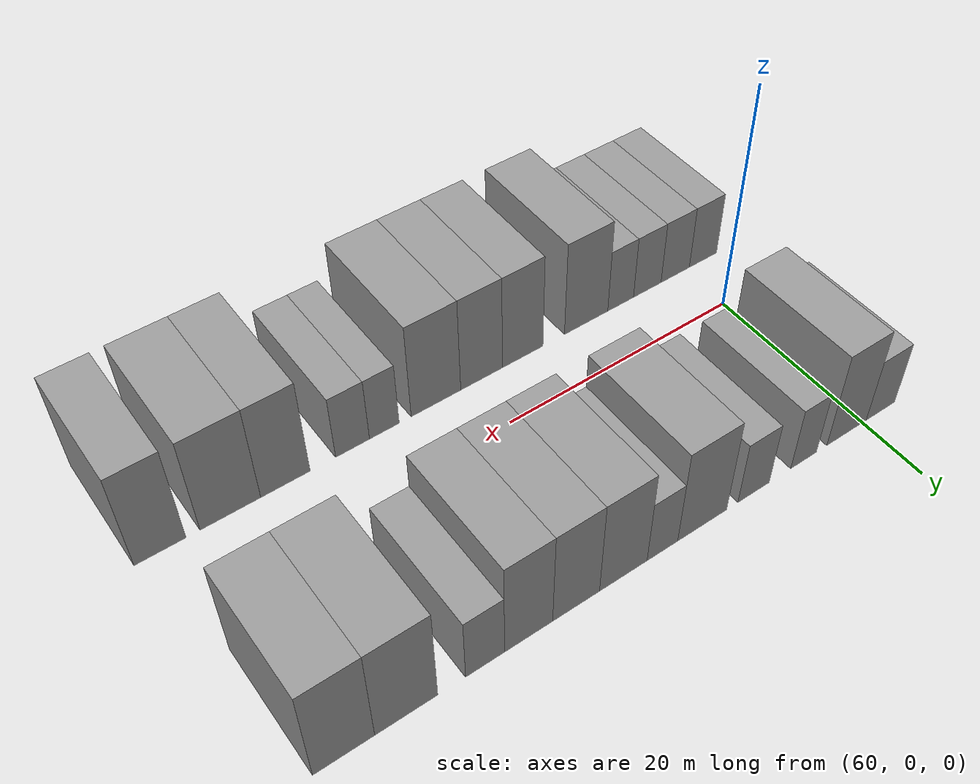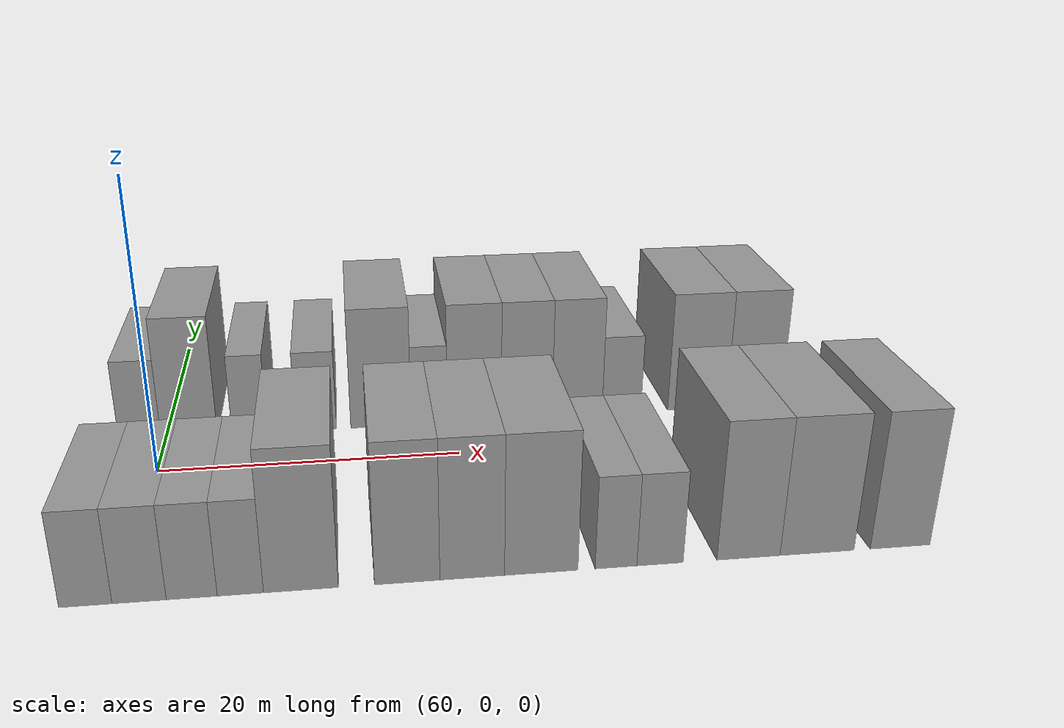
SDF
<sdf version="1.6">
 <world name="default">
  <model name="building_13">
   <static>1</static>
   <pose>58.2277 9.5000 0 0.000000 0.000000 1.570796</pose>
   <link name="link">
    <pose>0 0 3.00 0 0 0</pose>
    <collision name="collision"><geometry><box><size>10.0000 2.8518 6.0000</size></box></geometry></collision>
    <visual name="visual">
     <cast_shadows>0</cast_shadows>
     <geometry><box><size>10.0000 2.8518 6.0000</size></box></geometry>
     <material>
      <script>
       <uri>model://grey_wall/materials/scripts</uri>
       <uri>model://grey_wall/materials/textures</uri>
       <name>vrc/grey_wall</name>
      </script>
     </material>
    </visual>
   </link>
  </model>
  <model name="building_14">
   <static>1</static>
   <pose>61.5808 9.5000 0 0.000000 0.000000 1.570796</pose>
   <link name="link">
    <pose>0 0 4.50 0 0 0</pose>
    <collision name="collision"><geometry><box><size>10.0000 3.8543 9.0000</size></box></geometry></collision>
    <visual name="visual">
     <cast_shadows>0</cast_shadows>
     <geometry><box><size>10.0000 3.8543 9.0000</size></box></geometry>
     <material>
      <script>
       <uri>model://grey_wall/materials/scripts</uri>
       <uri>model://grey_wall/materials/textures</uri>
       <name>vrc/grey_wall</name>
      </script>
     </material>
    </visual>
   </link>
  </model>
  <model name="building_15">
   <static>1</static>
   <pose>65.7186 9.5000 0 0.000000 0.000000 1.570796</pose>
   <link name="link">
    <pose>0 0 3.00 0 0 0</pose>
    <collision name="collision"><geometry><box><size>10.0000 2.4212 6.0000</size></box></geometry></collision>
    <visual name="visual">
     <cast_shadows>0</cast_shadows>
     <geometry><box><size>10.0000 2.4212 6.0000</size></box></geometry>
     <material>
      <script>
       <uri>model://grey_wall/materials/scripts</uri>
       <uri>model://grey_wall/materials/textures</uri>
       <name>vrc/grey_wall</name>
      </script>
     </material>
    </visual>
   </link>
  </model>
  <model name="building_16">
   <static>1</static>
   <pose>70.3492 9.5000 0 0.000000 0.000000 1.570796</pose>
   <link name="link">
    <pose>0 0 3.00 0 0 0</pose>
    <collision name="collision"><geometry><box><size>10.0000 2.8400 6.0000</size></box></geometry></collision>
    <visual name="visual">
     <cast_shadows>0</cast_shadows>
     <geometry><box><size>10.0000 2.8400 6.0000</size></box></geometry>
     <material>
      <script>
       <uri>model://grey_wall/materials/scripts</uri>
       <uri>model://grey_wall/materials/textures</uri>
       <name>vrc/grey_wall</name>
      </script>
     </material>
    </visual>
   </link>
  </model>
  <model name="building_17">
   <static>1</static>
   <pose>74.9035 9.5000 0 0.000000 0.000000 1.570796</pose>
   <link name="link">
    <pose>0 0 4.50 0 0 0</pose>
    <collision name="collision"><geometry><box><size>10.0000 4.2686 9.0000</size></box></geometry></collision>
    <visual name="visual">
     <cast_shadows>0</cast_shadows>
     <geometry><box><size>10.0000 4.2686 9.0000</size></box></geometry>
     <material>
      <script>
       <uri>model://grey_wall/materials/scripts</uri>
       <uri>model://grey_wall/materials/textures</uri>
       <name>vrc/grey_wall</name>
      </script>
     </material>
    </visual>
   </link>
  </model>
  <model name="building_18">
   <static>1</static>
   <pose>78.3266 9.5000 0 0.000000 0.000000 1.570796</pose>
   <link name="link">
    <pose>0 0 3.00 0 0 0</pose>
    <collision name="collision"><geometry><box><size>10.0000 2.5777 6.0000</size></box></geometry></collision>
    <visual name="visual">
     <cast_shadows>0</cast_shadows>
     <geometry><box><size>10.0000 2.5777 6.0000</size></box></geometry>
     <material>
      <script>
       <uri>model://grey_wall/materials/scripts</uri>
       <uri>model://grey_wall/materials/textures</uri>
       <name>vrc/grey_wall</name>
      </script>
     </material>
    </visual>
   </link>
  </model>
  <model name="building_19">
   <static>1</static>
   <pose>81.5625 9.5000 0 0.000000 0.000000 1.570796</pose>
   <link name="link">
    <pose>0 0 4.50 0 0 0</pose>
    <collision name="collision"><geometry><box><size>10.0000 3.8939 9.0000</size></box></geometry></collision>
    <visual name="visual">
     <cast_shadows>0</cast_shadows>
     <geometry><box><size>10.0000 3.8939 9.0000</size></box></geometry>
     <material>
      <script>
       <uri>model://grey_wall/materials/scripts</uri>
       <uri>model://grey_wall/materials/textures</uri>
       <name>vrc/grey_wall</name>
      </script>
     </material>
    </visual>
   </link>
  </model>
  <model name="building_20">
   <static>1</static>
   <pose>85.3593 9.5000 0 0.000000 0.000000 1.570796</pose>
   <link name="link">
    <pose>0 0 4.50 0 0 0</pose>
    <collision name="collision"><geometry><box><size>10.0000 3.6998 9.0000</size></box></geometry></collision>
    <visual name="visual">
     <cast_shadows>0</cast_shadows>
     <geometry><box><size>10.0000 3.6998 9.0000</size></box></geometry>
     <material>
      <script>
       <uri>model://grey_wall/materials/scripts</uri>
       <uri>model://grey_wall/materials/textures</uri>
       <name>vrc/grey_wall</name>
      </script>
     </material>
    </visual>
   </link>
  </model>
  <model name="building_21">
   <static>1</static>
   <pose>89.0442 9.5000 0 0.000000 0.000000 1.570796</pose>
   <link name="link">
    <pose>0 0 4.50 0 0 0</pose>
    <collision name="collision"><geometry><box><size>10.0000 3.6701 9.0000</size></box></geometry></collision>
    <visual name="visual">
     <cast_shadows>0</cast_shadows>
     <geometry><box><size>10.0000 3.6701 9.0000</size></box></geometry>
     <material>
      <script>
       <uri>model://grey_wall/materials/scripts</uri>
       <uri>model://grey_wall/materials/textures</uri>
       <name>vrc/grey_wall</name>
      </script>
     </material>
    </visual>
   </link>
  </model>
  <model name="building_22">
   <static>1</static>
   <pose>92.3200 9.5000 0 0.000000 0.000000 1.570796</pose>
   <link name="link">
    <pose>0 0 3.00 0 0 0</pose>
    <collision name="collision"><geometry><box><size>10.0000 2.8814 6.0000</size></box></geometry></collision>
    <visual name="visual">
     <cast_shadows>0</cast_shadows>
     <geometry><box><size>10.0000 2.8814 6.0000</size></box></geometry>
     <material>
      <script>
       <uri>model://grey_wall/materials/scripts</uri>
       <uri>model://grey_wall/materials/textures</uri>
       <name>vrc/grey_wall</name>
      </script>
     </material>
    </visual>
   </link>
  </model>
  <model name="building_23">
   <static>1</static>
   <pose>97.9645 9.5000 0 0.000000 0.000000 1.570796</pose>
   <link name="link">
    <pose>0 0 4.50 0 0 0</pose>
    <collision name="collision"><geometry><box><size>10.0000 4.4076 9.0000</size></box></geometry></collision>
    <visual name="visual">
     <cast_shadows>0</cast_shadows>
     <geometry><box><size>10.0000 4.4076 9.0000</size></box></geometry>
     <material>
      <script>
       <uri>model://grey_wall/materials/scripts</uri>
       <uri>model://grey_wall/materials/textures</uri>
       <name>vrc/grey_wall</name>
      </script>
     </material>
    </visual>
   </link>
  </model>
  <model name="building_24">
   <static>1</static>
   <pose>102.2498 9.5000 0 0.000000 0.000000 1.570796</pose>
   <link name="link">
    <pose>0 0 4.50 0 0 0</pose>
    <collision name="collision"><geometry><box><size>10.0000 4.1629 9.0000</size></box></geometry></collision>
    <visual name="visual">
     <cast_shadows>0</cast_shadows>
     <geometry><box><size>10.0000 4.1629 9.0000</size></box></geometry>
     <material>
      <script>
       <uri>model://grey_wall/materials/scripts</uri>
       <uri>model://grey_wall/materials/textures</uri>
       <name>vrc/grey_wall</name>
      </script>
     </material>
    </visual>
   </link>
  </model>
  <model name="building_62">
   <static>1</static>
   <pose>58.0690 -9.5000 0 0.000000 0.000000 1.570796</pose>
   <link name="link">
    <pose>0 0 3.00 0 0 0</pose>
    <collision name="collision"><geometry><box><size>10.0000 2.8201 6.0000</size></box></geometry></collision>
    <visual name="visual">
     <cast_shadows>0</cast_shadows>
     <geometry><box><size>10.0000 2.8201 6.0000</size></box></geometry>
     <material>
      <script>
       <uri>model://grey_wall/materials/scripts</uri>
       <uri>model://grey_wall/materials/textures</uri>
       <name>vrc/grey_wall</name>
      </script>
     </material>
    </visual>
   </link>
  </model>
  <model name="building_63">
   <static>1</static>
   <pose>60.9207 -9.5000 0 0.000000 0.000000 1.570796</pose>
   <link name="link">
    <pose>0 0 3.00 0 0 0</pose>
    <collision name="collision"><geometry><box><size>10.0000 2.8832 6.0000</size></box></geometry></collision>
    <visual name="visual">
     <cast_shadows>0</cast_shadows>
     <geometry><box><size>10.0000 2.8832 6.0000</size></box></geometry>
     <material>
      <script>
       <uri>model://grey_wall/materials/scripts</uri>
       <uri>model://grey_wall/materials/textures</uri>
       <name>vrc/grey_wall</name>
      </script>
     </material>
    </visual>
   </link>
  </model>
  <model name="building_64">
   <static>1</static>
   <pose>63.7338 -9.5000 0 0.000000 0.000000 1.570796</pose>
   <link name="link">
    <pose>0 0 3.00 0 0 0</pose>
    <collision name="collision"><geometry><box><size>10.0000 2.7431 6.0000</size></box></geometry></collision>
    <visual name="visual">
     <cast_shadows>0</cast_shadows>
     <geometry><box><size>10.0000 2.7431 6.0000</size></box></geometry>
     <material>
      <script>
       <uri>model://grey_wall/materials/scripts</uri>
       <uri>model://grey_wall/materials/textures</uri>
       <name>vrc/grey_wall</name>
      </script>
     </material>
    </visual>
   </link>
  </model>
  <model name="building_65">
   <static>1</static>
   <pose>66.3600 -9.5000 0 0.000000 0.000000 1.570796</pose>
   <link name="link">
    <pose>0 0 3.00 0 0 0</pose>
    <collision name="collision"><geometry><box><size>10.0000 2.5092 6.0000</size></box></geometry></collision>
    <visual name="visual">
     <cast_shadows>0</cast_shadows>
     <geometry><box><size>10.0000 2.5092 6.0000</size></box></geometry>
     <material>
      <script>
       <uri>model://grey_wall/materials/scripts</uri>
       <uri>model://grey_wall/materials/textures</uri>
       <name>vrc/grey_wall</name>
      </script>
     </material>
    </visual>
   </link>
  </model>
  <model name="building_66">
   <static>1</static>
   <pose>69.6719 -9.5000 0 0.000000 0.000000 1.570796</pose>
   <link name="link">
    <pose>0 0 4.50 0 0 0</pose>
    <collision name="collision"><geometry><box><size>10.0000 4.1146 9.0000</size></box></geometry></collision>
    <visual name="visual">
     <cast_shadows>0</cast_shadows>
     <geometry><box><size>10.0000 4.1146 9.0000</size></box></geometry>
     <material>
      <script>
       <uri>model://grey_wall/materials/scripts</uri>
       <uri>model://grey_wall/materials/textures</uri>
       <name>vrc/grey_wall</name>
      </script>
     </material>
    </visual>
   </link>
  </model>
  <model name="building_67">
   <static>1</static>
   <pose>75.5628 -9.5000 0 0.000000 0.000000 1.570796</pose>
   <link name="link">
    <pose>0 0 4.50 0 0 0</pose>
    <collision name="collision"><geometry><box><size>10.0000 3.6673 9.0000</size></box></geometry></collision>
    <visual name="visual">
     <cast_shadows>0</cast_shadows>
     <geometry><box><size>10.0000 3.6673 9.0000</size></box></geometry>
     <material>
      <script>
       <uri>model://grey_wall/materials/scripts</uri>
       <uri>model://grey_wall/materials/textures</uri>
       <name>vrc/grey_wall</name>
      </script>
     </material>
    </visual>
   </link>
  </model>
  <model name="building_68">
   <static>1</static>
   <pose>79.2327 -9.5000 0 0.000000 0.000000 1.570796</pose>
   <link name="link">
    <pose>0 0 4.50 0 0 0</pose>
    <collision name="collision"><geometry><box><size>10.0000 3.6726 9.0000</size></box></geometry></collision>
    <visual name="visual">
     <cast_shadows>0</cast_shadows>
     <geometry><box><size>10.0000 3.6726 9.0000</size></box></geometry>
     <material>
      <script>
       <uri>model://grey_wall/materials/scripts</uri>
       <uri>model://grey_wall/materials/textures</uri>
       <name>vrc/grey_wall</name>
      </script>
     </material>
    </visual>
   </link>
  </model>
  <model name="building_69">
   <static>1</static>
   <pose>83.1784 -9.5000 0 0.000000 0.000000 1.570796</pose>
   <link name="link">
    <pose>0 0 4.50 0 0 0</pose>
    <collision name="collision"><geometry><box><size>10.0000 4.2188 9.0000</size></box></geometry></collision>
    <visual name="visual">
     <cast_shadows>0</cast_shadows>
     <geometry><box><size>10.0000 4.2188 9.0000</size></box></geometry>
     <material>
      <script>
       <uri>model://grey_wall/materials/scripts</uri>
       <uri>model://grey_wall/materials/textures</uri>
       <name>vrc/grey_wall</name>
      </script>
     </material>
    </visual>
   </link>
  </model>
  <model name="building_70">
   <static>1</static>
   <pose>87.5057 -9.5000 0 0.000000 0.000000 1.570796</pose>
   <link name="link">
    <pose>0 0 3.00 0 0 0</pose>
    <collision name="collision"><geometry><box><size>10.0000 2.4358 6.0000</size></box></geometry></collision>
    <visual name="visual">
     <cast_shadows>0</cast_shadows>
     <geometry><box><size>10.0000 2.4358 6.0000</size></box></geometry>
     <material>
      <script>
       <uri>model://grey_wall/materials/scripts</uri>
       <uri>model://grey_wall/materials/textures</uri>
       <name>vrc/grey_wall</name>
      </script>
     </material>
    </visual>
   </link>
  </model>
  <model name="building_71">
   <static>1</static>
   <pose>90.0866 -9.5000 0 0.000000 0.000000 1.570796</pose>
   <link name="link">
    <pose>0 0 3.00 0 0 0</pose>
    <collision name="collision"><geometry><box><size>10.0000 2.7261 6.0000</size></box></geometry></collision>
    <visual name="visual">
     <cast_shadows>0</cast_shadows>
     <geometry><box><size>10.0000 2.7261 6.0000</size></box></geometry>
     <material>
      <script>
       <uri>model://grey_wall/materials/scripts</uri>
       <uri>model://grey_wall/materials/textures</uri>
       <name>vrc/grey_wall</name>
      </script>
     </material>
    </visual>
   </link>
  </model>
  <model name="building_72">
   <static>1</static>
   <pose>95.3455 -9.5000 0 0.000000 0.000000 1.570796</pose>
   <link name="link">
    <pose>0 0 4.50 0 0 0</pose>
    <collision name="collision"><geometry><box><size>10.0000 3.7916 9.0000</size></box></geometry></collision>
    <visual name="visual">
     <cast_shadows>0</cast_shadows>
     <geometry><box><size>10.0000 3.7916 9.0000</size></box></geometry>
     <material>
      <script>
       <uri>model://grey_wall/materials/scripts</uri>
       <uri>model://grey_wall/materials/textures</uri>
       <name>vrc/grey_wall</name>
      </script>
     </material>
    </visual>
   </link>
  </model>
  <model name="building_73">
   <static>1</static>
   <pose>99.4895 -9.5000 0 0.000000 0.000000 1.570796</pose>
   <link name="link">
    <pose>0 0 4.50 0 0 0</pose>
    <collision name="collision"><geometry><box><size>10.0000 4.4966 9.0000</size></box></geometry></collision>
    <visual name="visual">
     <cast_shadows>0</cast_shadows>
     <geometry><box><size>10.0000 4.4966 9.0000</size></box></geometry>
     <material>
      <script>
       <uri>model://grey_wall/materials/scripts</uri>
       <uri>model://grey_wall/materials/textures</uri>
       <name>vrc/grey_wall</name>
      </script>
     </material>
    </visual>
   </link>
  </model>
  <model name="building_74">
   <static>1</static>
   <pose>104.5805 -9.5000 0 0.000000 0.000000 1.570796</pose>
   <link name="link">
    <pose>0 0 4.50 0 0 0</pose>
    <collision name="collision"><geometry><box><size>10.0000 3.6854 9.0000</size></box></geometry></collision>
    <visual name="visual">
     <cast_shadows>0</cast_shadows>
     <geometry><box><size>10.0000 3.6854 9.0000</size></box></geometry>
     <material>
      <script>
       <uri>model://grey_wall/materials/scripts</uri>
       <uri>model://grey_wall/materials/textures</uri>
       <name>vrc/grey_wall</name>
      </script>
     </material>
    </visual>
   </link>
  </model>
 </world>
</sdf>
